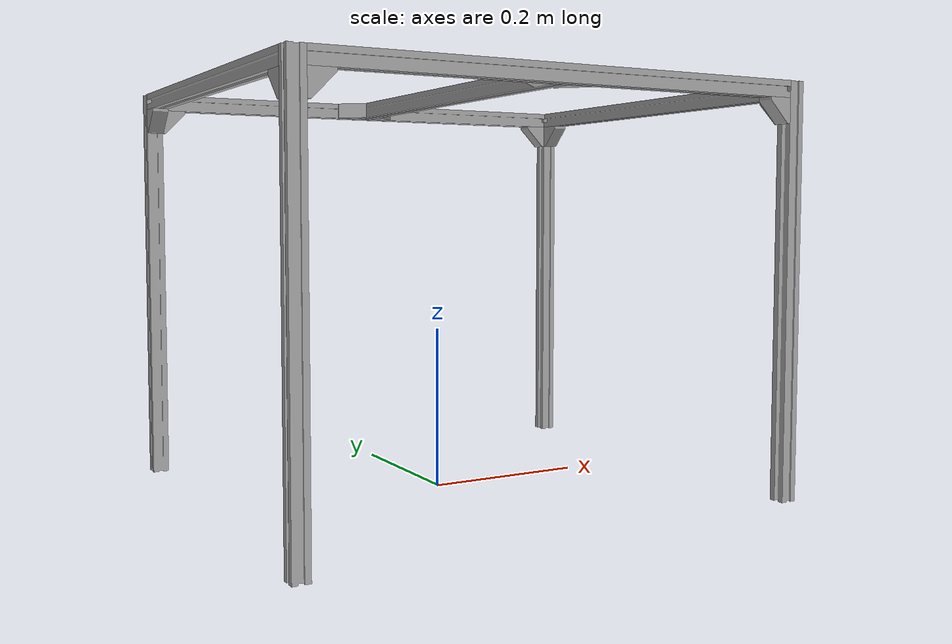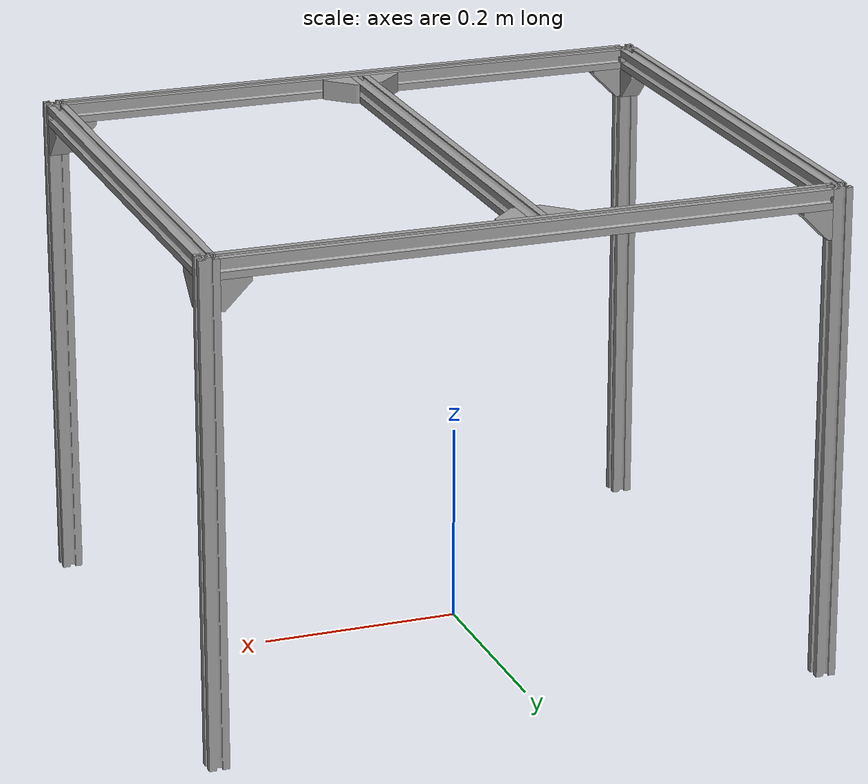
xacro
<?xml version="1.0" ?>
<robot name="frames" xmlns:xacro="http://www.ros.org/wiki/xacro">

<xacro:include filename="$(find frames_description)/urdf/materials.xacro" />
<xacro:include filename="$(find frames_description)/urdf/frames.trans" />
<link name="base_link">
  <inertial>
    <origin xyz="-0.2899933075909157 0.25500862074127895 0.25" rpy="0 0 0"/>
    <mass value="0.7381890004738041"/>
    <inertia ixx="0.015409" iyy="0.015409" izz="6e-05" ixy="0.0" iyz="-0.0" ixz="0.0"/>
  </inertial>
  <visual>
    <origin xyz="0 0 0" rpy="0 0 0"/>
    <geometry>
      <mesh filename="package://frames_description/meshes/base_link.stl" scale="0.001 0.001 0.001"/>
    </geometry>
    <material name="_"/>
  </visual>
  <collision>
    <origin xyz="0 0 0" rpy="0 0 0"/>
    <geometry>
      <mesh filename="package://frames_description/meshes/base_link.stl" scale="0.001 0.001 0.001"/>
    </geometry>
  </collision>
</link>

<link name="frame_50mm__v1__1__1">
  <inertial>
    <origin xyz="0.0065066924090841916 -0.25000000000000006 -0.009991379258721178" rpy="0 0 0"/>
    <mass value="0.7381890004738041"/>
    <inertia ixx="0.015409" iyy="6e-05" izz="0.015409" ixy="0.0" iyz="0.0" ixz="0.0"/>
  </inertial>
  <visual>
    <origin xyz="0.2965 -0.245 -0.5" rpy="0 0 0"/>
    <geometry>
      <mesh filename="package://frames_description/meshes/frame_50mm__v1__1__1.stl" scale="0.001 0.001 0.001"/>
    </geometry>
    <material name="_"/>
  </visual>
  <collision>
    <origin xyz="0.2965 -0.245 -0.5" rpy="0 0 0"/>
    <geometry>
      <mesh filename="package://frames_description/meshes/frame_50mm__v1__1__1.stl" scale="0.001 0.001 0.001"/>
    </geometry>
  </collision>
</link>

<link name="clasp_v1_1">
  <inertial>
    <origin xyz="-0.002999999999999725 -0.01119098457888501 -0.011190984578885121" rpy="0 0 0"/>
    <mass value="0.08823399999999999"/>
    <inertia ixx="1e-05" iyy="8e-06" izz="8e-06" ixy="0.0" iyz="2e-06" ixz="0.0"/>
  </inertial>
  <visual>
    <origin xyz="0.287 -0.245 -0.48" rpy="0 0 0"/>
    <geometry>
      <mesh filename="package://frames_description/meshes/clasp_v1_1.stl" scale="0.001 0.001 0.001"/>
    </geometry>
    <material name="_"/>
  </visual>
  <collision>
    <origin xyz="0.287 -0.245 -0.48" rpy="0 0 0"/>
    <geometry>
      <mesh filename="package://frames_description/meshes/clasp_v1_1.stl" scale="0.001 0.001 0.001"/>
    </geometry>
  </collision>
</link>

<link name="frame_50mm___1">
  <inertial>
    <origin xyz="0.006506692409084303 -0.0099913792587209 -0.25" rpy="0 0 0"/>
    <mass value="0.7381890004738041"/>
    <inertia ixx="0.015409" iyy="0.015409" izz="6e-05" ixy="0.0" iyz="0.0" ixz="0.0"/>
  </inertial>
  <visual>
    <origin xyz="0.2965 0.255 -0.5" rpy="0 0 0"/>
    <geometry>
      <mesh filename="package://frames_description/meshes/frame_50mm___1.stl" scale="0.001 0.001 0.001"/>
    </geometry>
    <material name="_"/>
  </visual>
  <collision>
    <origin xyz="0.2965 0.255 -0.5" rpy="0 0 0"/>
    <geometry>
      <mesh filename="package://frames_description/meshes/frame_50mm___1.stl" scale="0.001 0.001 0.001"/>
    </geometry>
  </collision>
</link>

<link name="frame_60mm__v3_1">
  <inertial>
    <origin xyz="0.30000000000000043 0.006508620689125111 -0.01000669240908375" rpy="0 0 0"/>
    <mass value="0.8858268005685649"/>
    <inertia ixx="7.2e-05" iyy="0.026611" izz="0.026611" ixy="-0.0" iyz="-0.0" ixz="-0.0"/>
  </inertial>
  <visual>
    <origin xyz="0.28 0.2715 -0.5" rpy="0 0 0"/>
    <geometry>
      <mesh filename="package://frames_description/meshes/frame_60mm__v3_1.stl" scale="0.001 0.001 0.001"/>
    </geometry>
    <material name="_"/>
  </visual>
  <collision>
    <origin xyz="0.28 0.2715 -0.5" rpy="0 0 0"/>
    <geometry>
      <mesh filename="package://frames_description/meshes/frame_60mm__v3_1.stl" scale="0.001 0.001 0.001"/>
    </geometry>
  </collision>
</link>

<link name="frame_50mm__v1__3__1">
  <inertial>
    <origin xyz="0.010006692409084306 0.006508620741279114 -0.24999999999999972" rpy="0 0 0"/>
    <mass value="0.7381890004738041"/>
    <inertia ixx="0.015409" iyy="0.015409" izz="6e-05" ixy="0.0" iyz="-0.0" ixz="0.0"/>
  </inertial>
  <visual>
    <origin xyz="-0.32 0.2715 -0.5" rpy="0 0 0"/>
    <geometry>
      <mesh filename="package://frames_description/meshes/frame_50mm__v1__3__1.stl" scale="0.001 0.001 0.001"/>
    </geometry>
    <material name="_"/>
  </visual>
  <collision>
    <origin xyz="-0.32 0.2715 -0.5" rpy="0 0 0"/>
    <geometry>
      <mesh filename="package://frames_description/meshes/frame_50mm__v1__3__1.stl" scale="0.001 0.001 0.001"/>
    </geometry>
  </collision>
</link>

<link name="frame_50mm__v1__5__1">
  <inertial>
    <origin xyz="-0.00649330759091582 0.24999999999999972 -0.010008620741279006" rpy="0 0 0"/>
    <mass value="0.7381890004738041"/>
    <inertia ixx="0.015409" iyy="6e-05" izz="0.015409" ixy="0.0" iyz="0.0" ixz="-0.0"/>
  </inertial>
  <visual>
    <origin xyz="-0.3365 0.255 -0.5" rpy="0 0 0"/>
    <geometry>
      <mesh filename="package://frames_description/meshes/frame_50mm__v1__5__1.stl" scale="0.001 0.001 0.001"/>
    </geometry>
    <material name="_"/>
  </visual>
  <collision>
    <origin xyz="-0.3365 0.255 -0.5" rpy="0 0 0"/>
    <geometry>
      <mesh filename="package://frames_description/meshes/frame_50mm__v1__5__1.stl" scale="0.001 0.001 0.001"/>
    </geometry>
  </collision>
</link>

<link name="frame_60mm__v3__1__1">
  <inertial>
    <origin xyz="0.30000000000000027 -0.006491379258721064 -0.01000669240908375" rpy="0 0 0"/>
    <mass value="0.8858268005685649"/>
    <inertia ixx="7.2e-05" iyy="0.026611" izz="0.026611" ixy="-0.0" iyz="-0.0" ixz="-0.0"/>
  </inertial>
  <visual>
    <origin xyz="0.28 -0.2615 -0.5" rpy="0 0 0"/>
    <geometry>
      <mesh filename="package://frames_description/meshes/frame_60mm__v3__1__1.stl" scale="0.001 0.001 0.001"/>
    </geometry>
    <material name="_"/>
  </visual>
  <collision>
    <origin xyz="0.28 -0.2615 -0.5" rpy="0 0 0"/>
    <geometry>
      <mesh filename="package://frames_description/meshes/frame_60mm__v3__1__1.stl" scale="0.001 0.001 0.001"/>
    </geometry>
  </collision>
</link>

<link name="frame_50mm__v1__4__1">
  <inertial>
    <origin xyz="-0.006493307590915709 0.01000862074127895 -0.24999999999999972" rpy="0 0 0"/>
    <mass value="0.7381890004738041"/>
    <inertia ixx="0.015409" iyy="0.015409" izz="6e-05" ixy="0.0" iyz="0.0" ixz="0.0"/>
  </inertial>
  <visual>
    <origin xyz="-0.3365 -0.245 -0.5" rpy="0 0 0"/>
    <geometry>
      <mesh filename="package://frames_description/meshes/frame_50mm__v1__4__1.stl" scale="0.001 0.001 0.001"/>
    </geometry>
    <material name="_"/>
  </visual>
  <collision>
    <origin xyz="-0.3365 -0.245 -0.5" rpy="0 0 0"/>
    <geometry>
      <mesh filename="package://frames_description/meshes/frame_50mm__v1__4__1.stl" scale="0.001 0.001 0.001"/>
    </geometry>
  </collision>
</link>

<link name="frame_50mm__v1__6__1">
  <inertial>
    <origin xyz="-0.30999137925872083 -0.25000000000000033 -0.010006692409083862" rpy="0 0 0"/>
    <mass value="0.7381890004738041"/>
    <inertia ixx="0.015409" iyy="6e-05" izz="0.015409" ixy="0.0" iyz="-0.0" ixz="-0.0"/>
  </inertial>
  <visual>
    <origin xyz="-0.32 -0.245 -0.5" rpy="0 0 0"/>
    <geometry>
      <mesh filename="package://frames_description/meshes/frame_50mm__v1__6__1.stl" scale="0.001 0.001 0.001"/>
    </geometry>
    <material name="_"/>
  </visual>
  <collision>
    <origin xyz="-0.32 -0.245 -0.5" rpy="0 0 0"/>
    <geometry>
      <mesh filename="package://frames_description/meshes/frame_50mm__v1__6__1.stl" scale="0.001 0.001 0.001"/>
    </geometry>
  </collision>
</link>

<link name="clasp_v1__9__1">
  <inertial>
    <origin xyz="0.011190984578885343 -0.010000000000000064 -0.0111909845788849" rpy="0 0 0"/>
    <mass value="0.08823399999999999"/>
    <inertia ixx="8e-06" iyy="1e-05" izz="8e-06" ixy="0.0" iyz="0.0" ixz="-2e-06"/>
  </inertial>
  <visual>
    <origin xyz="0.28 -0.265 -0.48" rpy="0 0 0"/>
    <geometry>
      <mesh filename="package://frames_description/meshes/clasp_v1__9__1.stl" scale="0.001 0.001 0.001"/>
    </geometry>
    <material name="_"/>
  </visual>
  <collision>
    <origin xyz="0.28 -0.265 -0.48" rpy="0 0 0"/>
    <geometry>
      <mesh filename="package://frames_description/meshes/clasp_v1__9__1.stl" scale="0.001 0.001 0.001"/>
    </geometry>
  </collision>
</link>

<link name="clasp_v1__8__1">
  <inertial>
    <origin xyz="0.011190984578885343 0.009999999947846117 -0.0111909845788849" rpy="0 0 0"/>
    <mass value="0.08823399999999999"/>
    <inertia ixx="8e-06" iyy="1e-05" izz="8e-06" ixy="-0.0" iyz="0.0" ixz="-2e-06"/>
  </inertial>
  <visual>
    <origin xyz="0.28 0.275 -0.48" rpy="0 0 0"/>
    <geometry>
      <mesh filename="package://frames_description/meshes/clasp_v1__8__1.stl" scale="0.001 0.001 0.001"/>
    </geometry>
    <material name="_"/>
  </visual>
  <collision>
    <origin xyz="0.28 0.275 -0.48" rpy="0 0 0"/>
    <geometry>
      <mesh filename="package://frames_description/meshes/clasp_v1__8__1.stl" scale="0.001 0.001 0.001"/>
    </geometry>
  </collision>
</link>

<link name="clasp_v1__6__1">
  <inertial>
    <origin xyz="0.010000000000000286 0.01119098457888515 -0.011190984578885343" rpy="0 0 0"/>
    <mass value="0.08823399999999999"/>
    <inertia ixx="1e-05" iyy="8e-06" izz="8e-06" ixy="0.0" iyz="-2e-06" ixz="0.0"/>
  </inertial>
  <visual>
    <origin xyz="0.3 0.255 -0.48" rpy="0 0 0"/>
    <geometry>
      <mesh filename="package://frames_description/meshes/clasp_v1__6__1.stl" scale="0.001 0.001 0.001"/>
    </geometry>
    <material name="_"/>
  </visual>
  <collision>
    <origin xyz="0.3 0.255 -0.48" rpy="0 0 0"/>
    <geometry>
      <mesh filename="package://frames_description/meshes/clasp_v1__6__1.stl" scale="0.001 0.001 0.001"/>
    </geometry>
  </collision>
</link>

<link name="clasp_v1__7__1">
  <inertial>
    <origin xyz="-0.011190984578884733 -0.010000000000000175 -0.0111909845788849" rpy="0 0 0"/>
    <mass value="0.08823399999999999"/>
    <inertia ixx="8e-06" iyy="1e-05" izz="8e-06" ixy="-0.0" iyz="-0.0" ixz="2e-06"/>
  </inertial>
  <visual>
    <origin xyz="-0.32 -0.265 -0.48" rpy="0 0 0"/>
    <geometry>
      <mesh filename="package://frames_description/meshes/clasp_v1__7__1.stl" scale="0.001 0.001 0.001"/>
    </geometry>
    <material name="_"/>
  </visual>
  <collision>
    <origin xyz="-0.32 -0.265 -0.48" rpy="0 0 0"/>
    <geometry>
      <mesh filename="package://frames_description/meshes/clasp_v1__7__1.stl" scale="0.001 0.001 0.001"/>
    </geometry>
  </collision>
</link>

<link name="clasp_v1__10__1">
  <inertial>
    <origin xyz="-0.009999999999999676 -0.011190984578885482 -0.0111909845788849" rpy="0 0 0"/>
    <mass value="0.08823399999999999"/>
    <inertia ixx="1e-05" iyy="8e-06" izz="8e-06" ixy="0.0" iyz="2e-06" ixz="0.0"/>
  </inertial>
  <visual>
    <origin xyz="-0.34 -0.245 -0.48" rpy="0 0 0"/>
    <geometry>
      <mesh filename="package://frames_description/meshes/clasp_v1__10__1.stl" scale="0.001 0.001 0.001"/>
    </geometry>
    <material name="_"/>
  </visual>
  <collision>
    <origin xyz="-0.34 -0.245 -0.48" rpy="0 0 0"/>
    <geometry>
      <mesh filename="package://frames_description/meshes/clasp_v1__10__1.stl" scale="0.001 0.001 0.001"/>
    </geometry>
  </collision>
</link>

<link name="clasp_v1__2__1">
  <inertial>
    <origin xyz="-0.010000000000000009 0.011190984578884872 -0.011190984578884733" rpy="0 0 0"/>
    <mass value="0.08823399999999999"/>
    <inertia ixx="1e-05" iyy="8e-06" izz="8e-06" ixy="-0.0" iyz="-2e-06" ixz="0.0"/>
  </inertial>
  <visual>
    <origin xyz="-0.34 0.255 -0.48" rpy="0 0 0"/>
    <geometry>
      <mesh filename="package://frames_description/meshes/clasp_v1__2__1.stl" scale="0.001 0.001 0.001"/>
    </geometry>
    <material name="_"/>
  </visual>
  <collision>
    <origin xyz="-0.34 0.255 -0.48" rpy="0 0 0"/>
    <geometry>
      <mesh filename="package://frames_description/meshes/clasp_v1__2__1.stl" scale="0.001 0.001 0.001"/>
    </geometry>
  </collision>
</link>

<link name="clasp_v1__4__1">
  <inertial>
    <origin xyz="-0.011190984578884289 0.009999999947846117 -0.0111909845788849" rpy="0 0 0"/>
    <mass value="0.08823399999999999"/>
    <inertia ixx="8e-06" iyy="1e-05" izz="8e-06" ixy="0.0" iyz="0.0" ixz="2e-06"/>
  </inertial>
  <visual>
    <origin xyz="-0.32 0.275 -0.48" rpy="0 0 0"/>
    <geometry>
      <mesh filename="package://frames_description/meshes/clasp_v1__4__1.stl" scale="0.001 0.001 0.001"/>
    </geometry>
    <material name="_"/>
  </visual>
  <collision>
    <origin xyz="-0.32 0.275 -0.48" rpy="0 0 0"/>
    <geometry>
      <mesh filename="package://frames_description/meshes/clasp_v1__4__1.stl" scale="0.001 0.001 0.001"/>
    </geometry>
  </collision>
</link>

<link name="clasp_v1__3__1">
  <inertial>
    <origin xyz="-0.031190984578884723 -0.011190984578885288 -0.010000000000000009" rpy="0 0 0"/>
    <mass value="0.08823399999999999"/>
    <inertia ixx="8e-06" iyy="8e-06" izz="1e-05" ixy="2e-06" iyz="0.0" ixz="0.0"/>
  </inertial>
  <visual>
    <origin xyz="-0.02 -0.245 -0.5" rpy="0 0 0"/>
    <geometry>
      <mesh filename="package://frames_description/meshes/clasp_v1__3__1.stl" scale="0.001 0.001 0.001"/>
    </geometry>
    <material name="_"/>
  </visual>
  <collision>
    <origin xyz="-0.02 -0.245 -0.5" rpy="0 0 0"/>
    <geometry>
      <mesh filename="package://frames_description/meshes/clasp_v1__3__1.stl" scale="0.001 0.001 0.001"/>
    </geometry>
  </collision>
</link>

<link name="clasp_v1__5__1">
  <inertial>
    <origin xyz="0.011190984578884938 -0.011190984578885288 -0.010000000000000009" rpy="0 0 0"/>
    <mass value="0.08823399999999999"/>
    <inertia ixx="8e-06" iyy="8e-06" izz="1e-05" ixy="-2e-06" iyz="0.0" ixz="0.0"/>
  </inertial>
  <visual>
    <origin xyz="-0.02 -0.245 -0.5" rpy="0 0 0"/>
    <geometry>
      <mesh filename="package://frames_description/meshes/clasp_v1__5__1.stl" scale="0.001 0.001 0.001"/>
    </geometry>
    <material name="_"/>
  </visual>
  <collision>
    <origin xyz="-0.02 -0.245 -0.5" rpy="0 0 0"/>
    <geometry>
      <mesh filename="package://frames_description/meshes/clasp_v1__5__1.stl" scale="0.001 0.001 0.001"/>
    </geometry>
  </collision>
</link>

<link name="clasp_v1__1__1">
  <inertial>
    <origin xyz="0.011190984578884938 0.011190984578884455 -0.010000000000000009" rpy="0 0 0"/>
    <mass value="0.08823399999999999"/>
    <inertia ixx="8e-06" iyy="8e-06" izz="1e-05" ixy="2e-06" iyz="0.0" ixz="0.0"/>
  </inertial>
  <visual>
    <origin xyz="-0.02 0.255 -0.5" rpy="0 0 0"/>
    <geometry>
      <mesh filename="package://frames_description/meshes/clasp_v1__1__1.stl" scale="0.001 0.001 0.001"/>
    </geometry>
    <material name="_"/>
  </visual>
  <collision>
    <origin xyz="-0.02 0.255 -0.5" rpy="0 0 0"/>
    <geometry>
      <mesh filename="package://frames_description/meshes/clasp_v1__1__1.stl" scale="0.001 0.001 0.001"/>
    </geometry>
  </collision>
</link>

<link name="clasp_v1__11__1">
  <inertial>
    <origin xyz="-0.011190984578884724 0.011190984578884455 -0.010000000000000009" rpy="0 0 0"/>
    <mass value="0.08823399999999999"/>
    <inertia ixx="8e-06" iyy="8e-06" izz="1e-05" ixy="-2e-06" iyz="-0.0" ixz="0.0"/>
  </inertial>
  <visual>
    <origin xyz="-0.0 0.255 -0.5" rpy="0 0 0"/>
    <geometry>
      <mesh filename="package://frames_description/meshes/clasp_v1__11__1.stl" scale="0.001 0.001 0.001"/>
    </geometry>
    <material name="_"/>
  </visual>
  <collision>
    <origin xyz="-0.0 0.255 -0.5" rpy="0 0 0"/>
    <geometry>
      <mesh filename="package://frames_description/meshes/clasp_v1__11__1.stl" scale="0.001 0.001 0.001"/>
    </geometry>
  </collision>
</link>

<joint name="« 1" type="fixed">
  <origin xyz="-0.2965 0.245 0.5" rpy="0 0 0"/>
  <parent link="base_link"/>
  <child link="frame_50mm__v1__1__1"/>
</joint>

<joint name="« 2" type="fixed">
  <origin xyz="0.0095 0.0 -0.02" rpy="0 0 0"/>
  <parent link="frame_50mm__v1__1__1"/>
  <child link="clasp_v1_1"/>
</joint>

<joint name="« 3" type="fixed">
  <origin xyz="0.0 -0.5 0.0" rpy="0 0 0"/>
  <parent link="frame_50mm__v1__1__1"/>
  <child link="frame_50mm___1"/>
</joint>

<joint name="« 4" type="fixed">
  <origin xyz="0.0165 -0.0165 0.0" rpy="0 0 0"/>
  <parent link="frame_50mm___1"/>
  <child link="frame_60mm__v3_1"/>
</joint>

<joint name="« 5" type="fixed">
  <origin xyz="0.6 0.0 0.0" rpy="0 0 0"/>
  <parent link="frame_60mm__v3_1"/>
  <child link="frame_50mm__v1__3__1"/>
</joint>

<joint name="« 6" type="fixed">
  <origin xyz="0.0165 0.0165 0.0" rpy="0 0 0"/>
  <parent link="frame_50mm__v1__3__1"/>
  <child link="frame_50mm__v1__5__1"/>
</joint>

<joint name="« 7" type="fixed">
  <origin xyz="-0.28 0.2615 0.5" rpy="0 0 0"/>
  <parent link="base_link"/>
  <child link="frame_60mm__v3__1__1"/>
</joint>

<joint name="« 8" type="fixed">
  <origin xyz="0.0 0.5 0.0" rpy="0 0 0"/>
  <parent link="frame_50mm__v1__5__1"/>
  <child link="frame_50mm__v1__4__1"/>
</joint>

<joint name="« 9" type="fixed">
  <origin xyz="-0.0165 0.5 0.0" rpy="0 0 0"/>
  <parent link="frame_50mm__v1__5__1"/>
  <child link="frame_50mm__v1__6__1"/>
</joint>

<joint name="« 10" type="fixed">
  <origin xyz="0.0 0.0035 -0.02" rpy="0 0 0"/>
  <parent link="frame_60mm__v3__1__1"/>
  <child link="clasp_v1__9__1"/>
</joint>

<joint name="« 11" type="fixed">
  <origin xyz="0.0 -0.0035 -0.02" rpy="0 0 0"/>
  <parent link="frame_60mm__v3_1"/>
  <child link="clasp_v1__8__1"/>
</joint>

<joint name="« 12" type="fixed">
  <origin xyz="-0.0035 -0.5 -0.02" rpy="0 0 0"/>
  <parent link="frame_50mm__v1__1__1"/>
  <child link="clasp_v1__6__1"/>
</joint>

<joint name="« 13" type="fixed">
  <origin xyz="0.6 0.0035 -0.02" rpy="0 0 0"/>
  <parent link="frame_60mm__v3__1__1"/>
  <child link="clasp_v1__7__1"/>
</joint>

<joint name="« 14" type="fixed">
  <origin xyz="0.0035 0.5 -0.02" rpy="0 0 0"/>
  <parent link="frame_50mm__v1__5__1"/>
  <child link="clasp_v1__10__1"/>
</joint>

<joint name="« 15" type="fixed">
  <origin xyz="0.0035 0.0 -0.02" rpy="0 0 0"/>
  <parent link="frame_50mm__v1__5__1"/>
  <child link="clasp_v1__2__1"/>
</joint>

<joint name="« 16" type="fixed">
  <origin xyz="0.6 -0.0035 -0.02" rpy="0 0 0"/>
  <parent link="frame_60mm__v3_1"/>
  <child link="clasp_v1__4__1"/>
</joint>

<joint name="« 17" type="fixed">
  <origin xyz="-0.3 0.0 0.0" rpy="0 0 0"/>
  <parent link="frame_50mm__v1__6__1"/>
  <child link="clasp_v1__3__1"/>
</joint>

<joint name="« 18" type="fixed">
  <origin xyz="-0.3 0.0 0.0" rpy="0 0 0"/>
  <parent link="frame_50mm__v1__6__1"/>
  <child link="clasp_v1__5__1"/>
</joint>

<joint name="« 19" type="fixed">
  <origin xyz="-0.3 -0.5 0.0" rpy="0 0 0"/>
  <parent link="frame_50mm__v1__6__1"/>
  <child link="clasp_v1__1__1"/>
</joint>

<joint name="« 20" type="fixed">
  <origin xyz="-0.32 -0.5 0.0" rpy="0 0 0"/>
  <parent link="frame_50mm__v1__6__1"/>
  <child link="clasp_v1__11__1"/>
</joint>

</robot>

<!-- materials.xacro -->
<robot name="frames" xmlns:xacro="http://www.ros.org/wiki/xacro" >

<material name="silver_default">
  <color rgba="0.700 0.700 0.700 1.000"/>
</material>
<material name="_">
  <color rgba="0.6274509803921569 0.6274509803921569 0.6274509803921569 1.0"/>
</material>

</robot>
